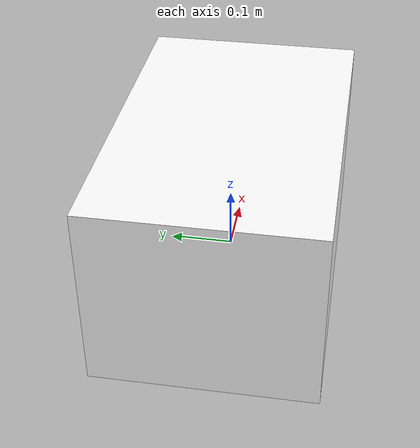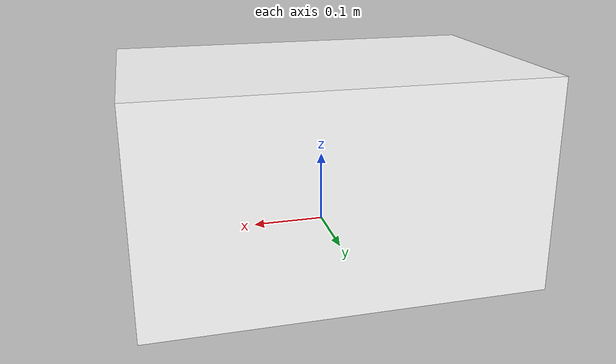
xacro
<?xml version="1.0"?>
<robot xmlns:xacro="http://www.ros.org/wiki/xacro" name="fobo2">

    <!-- Define parameters of chassis -->
    <xacro:property name="chassis_length" value="0.55"/>
    <xacro:property name="chassis_width" value="0.55"/>
    <xacro:property name="chassis_depth" value="0.6"/>
    <xacro:property name="chassis_size" value="0.55 0.35 0.3"/>
    <xacro:property name="chassis_mass" value="1"/>

    <!-- Define robot chassis -->
    <link name="base_link">
        <visual>
            <geometry>
                <box size="${chassis_size}"/>
            </geometry>
            <origin rpy="0 0 0" xyz="0 0 0.085"/>
            <material name="white">
                <color rgba="1 1 1 1"/>
            </material>
        </visual>
        <collision>
            <geometry>
                <box size="${chassis_size}"/>
            </geometry>
            <origin rpy="0 0 0" xyz="0 0 0.085"/>
        </collision>
        <inertial>
            <mass value="$(chassis_mass)"/>
            <inertia ixx="1" ixy="0.0" ixz="0.0" iyy="0.4" iyz="0.0" izz="0.2"/>
        </inertial>
    </link>

</robot>
